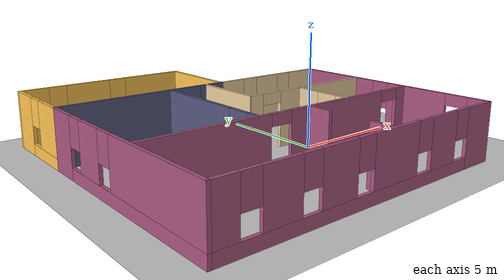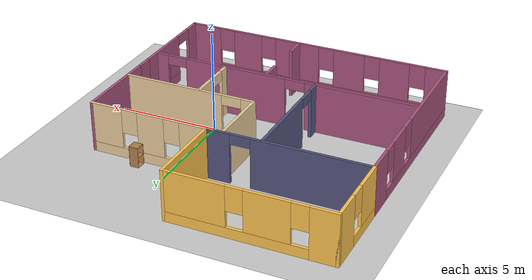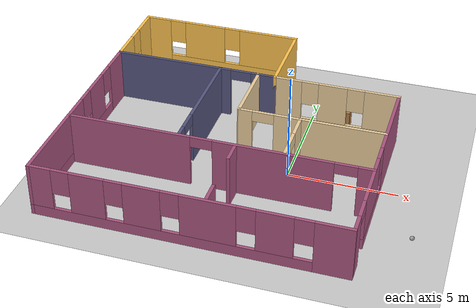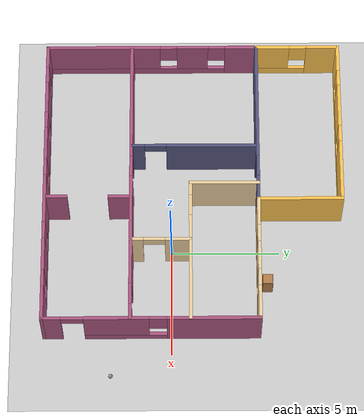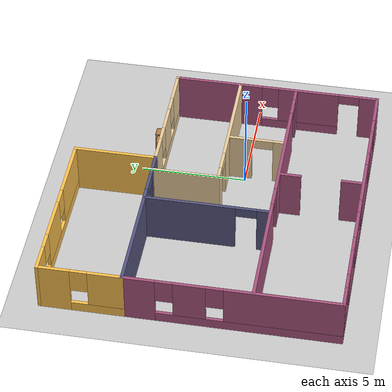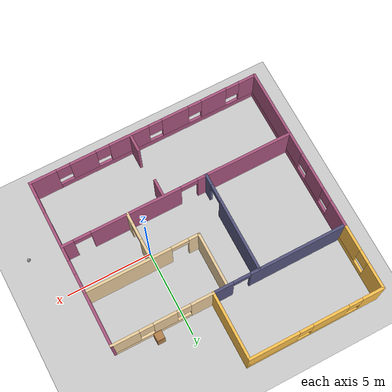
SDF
<sdf version="1.6">
 <world name="default">
  <model name="ground_plane">
   <static>1</static>
   <link name="link">
    <collision name="collision">
     <geometry><plane><normal>0 0 1</normal><size>100 100</size></plane></geometry>
     <surface>
      <contact><collide_bitmask>65535</collide_bitmask></contact>
      <friction><ode><mu>100</mu><mu2>50</mu2></ode></friction>
     </surface>
    </collision>
    <visual name="visual">
     <cast_shadows>0</cast_shadows>
     <geometry><plane><normal>0 0 1</normal><size>100 100</size></plane></geometry>
     <material>
      <script><uri>file://media/materials/scripts/gazebo.material</uri><name>Gazebo/Grey</name></script>
     </material>
    </visual>
   </link>
  </model>
  <model name="my_building">
   <pose>-2.73434 1.02226 0 0 -0 0</pose>
   <link name="Wall_26">
    <pose>-2.925 6.85 0 0 -0 0</pose>
    <visual name="Wall_26_Visual_0">
     <pose>-3.34539 0 1.25 0 -0 0</pose>
     <geometry><box><size>1.30922 0.15 2.5</size></box></geometry>
     <material>
      <script><uri>file://media/materials/scripts/gazebo.material</uri><name>Gazebo/Grey</name></script>
      <ambient>1 0.764706 0.305882 1</ambient>
     </material>
     <meta><layer>0</layer></meta>
    </visual>
    <collision name="Wall_26_Collision_0">
     <geometry><box><size>1.30922 0.15 2.5</size></box></geometry>
     <pose>-3.34539 0 1.25 0 -0 0</pose>
    </collision>
    <visual name="Wall_26_Visual_1">
     <pose>0.654609 0 0.25 0 -0 0</pose>
     <geometry><box><size>6.69078 0.15 0.5</size></box></geometry>
     <material>
      <script><uri>file://media/materials/scripts/gazebo.material</uri><name>Gazebo/Grey</name></script>
      <ambient>1 0.764706 0.305882 1</ambient>
     </material>
     <meta><layer>0</layer></meta>
    </visual>
    <collision name="Wall_26_Collision_1">
     <geometry><box><size>6.69078 0.15 0.5</size></box></geometry>
     <pose>0.654609 0 0.25 0 -0 0</pose>
    </collision>
    <visual name="Wall_26_Visual_2">
     <pose>-0.835359 0 1.5 0 -0 0</pose>
     <geometry><box><size>2.11085 0.15 2</size></box></geometry>
     <material>
      <script><uri>file://media/materials/scripts/gazebo.material</uri><name>Gazebo/Grey</name></script>
      <ambient>1 0.764706 0.305882 1</ambient>
     </material>
     <meta><layer>0</layer></meta>
    </visual>
    <collision name="Wall_26_Collision_2">
     <geometry><box><size>2.11085 0.15 2</size></box></geometry>
     <pose>-0.835359 0 1.5 0 -0 0</pose>
    </collision>
    <visual name="Wall_26_Visual_3">
     <pose>2.51003 0 1.5 0 -0 0</pose>
     <geometry><box><size>2.97994 0.15 2</size></box></geometry>
     <material>
      <script><uri>file://media/materials/scripts/gazebo.material</uri><name>Gazebo/Grey</name></script>
      <ambient>1 0.764706 0.305882 1</ambient>
     </material>
     <meta><layer>0</layer></meta>
    </visual>
    <collision name="Wall_26_Collision_3">
     <geometry><box><size>2.97994 0.15 2</size></box></geometry>
     <pose>2.51003 0 1.5 0 -0 0</pose>
    </collision>
    <visual name="Wall_26_Visual_4">
     <pose>-2.29078 0 1.9 0 -0 0</pose>
     <geometry><box><size>0.8 0.15 1.2</size></box></geometry>
     <material>
      <script><uri>file://media/materials/scripts/gazebo.material</uri><name>Gazebo/Grey</name></script>
      <ambient>1 0.764706 0.305882 1</ambient>
     </material>
     <meta><layer>0</layer></meta>
    </visual>
    <collision name="Wall_26_Collision_4">
     <geometry><box><size>0.8 0.15 1.2</size></box></geometry>
     <pose>-2.29078 0 1.9 0 -0 0</pose>
    </collision>
    <visual name="Wall_26_Visual_5">
     <pose>0.620064 0 1.9 0 -0 0</pose>
     <geometry><box><size>0.8 0.15 1.2</size></box></geometry>
     <material>
      <script><uri>file://media/materials/scripts/gazebo.material</uri><name>Gazebo/Grey</name></script>
      <ambient>1 0.764706 0.305882 1</ambient>
     </material>
     <meta><layer>0</layer></meta>
    </visual>
    <collision name="Wall_26_Collision_5">
     <geometry><box><size>0.8 0.15 1.2</size></box></geometry>
     <pose>0.620064 0 1.9 0 -0 0</pose>
    </collision>
   </link>
   <link name="Wall_28">
    <collision name="Wall_28_Collision">
     <geometry><box><size>4 0.15 2.5</size></box></geometry>
     <pose>0 0 1.25 0 -0 0</pose>
    </collision>
    <visual name="Wall_28_Visual">
     <pose>0 0 1.25 0 -0 0</pose>
     <geometry><box><size>4 0.15 2.5</size></box></geometry>
     <material>
      <script><uri>file://media/materials/scripts/gazebo.material</uri><name>Gazebo/Grey</name></script>
      <ambient>1 0.764706 0.305882 1</ambient>
     </material>
     <meta><layer>0</layer></meta>
    </visual>
    <pose>1 4.925 0 0 0 -1.5708</pose>
   </link>
   <link name="Wall_30">
    <pose>3.925 3 0 0 -0 0</pose>
    <visual name="Wall_30_Visual_0">
     <pose>-2.30571 0 1.25 0 -0 0</pose>
     <geometry><box><size>1.38858 0.15 2.5</size></box></geometry>
     <material>
      <script><uri>file://media/materials/scripts/gazebo.material</uri><name>Gazebo/Grey</name></script>
      <ambient>0.921569 0.807843 0.615686 1</ambient>
     </material>
     <meta><layer>0</layer></meta>
    </visual>
    <collision name="Wall_30_Collision_0">
     <geometry><box><size>1.38858 0.15 2.5</size></box></geometry>
     <pose>-2.30571 0 1.25 0 -0 0</pose>
    </collision>
    <visual name="Wall_30_Visual_1">
     <pose>0.694289 0 0.25 0 -0 0</pose>
     <geometry><box><size>4.61142 0.15 0.5</size></box></geometry>
     <material>
      <script><uri>file://media/materials/scripts/gazebo.material</uri><name>Gazebo/Grey</name></script>
      <ambient>0.921569 0.807843 0.615686 1</ambient>
     </material>
     <meta><layer>0</layer></meta>
    </visual>
    <collision name="Wall_30_Collision_1">
     <geometry><box><size>4.61142 0.15 0.5</size></box></geometry>
     <pose>0.694289 0 0.25 0 -0 0</pose>
    </collision>
    <visual name="Wall_30_Visual_2">
     <pose>-0.130466 0 1.5 0 -0 0</pose>
     <geometry><box><size>1.36191 0.15 2</size></box></geometry>
     <material>
      <script><uri>file://media/materials/scripts/gazebo.material</uri><name>Gazebo/Grey</name></script>
      <ambient>0.921569 0.807843 0.615686 1</ambient>
     </material>
     <meta><layer>0</layer></meta>
    </visual>
    <collision name="Wall_30_Collision_2">
     <geometry><box><size>1.36191 0.15 2</size></box></geometry>
     <pose>-0.130466 0 1.5 0 -0 0</pose>
    </collision>
    <visual name="Wall_30_Visual_3">
     <pose>2.17524 0 1.5 0 -0 0</pose>
     <geometry><box><size>1.64951 0.15 2</size></box></geometry>
     <material>
      <script><uri>file://media/materials/scripts/gazebo.material</uri><name>Gazebo/Grey</name></script>
      <ambient>0.921569 0.807843 0.615686 1</ambient>
     </material>
     <meta><layer>0</layer></meta>
    </visual>
    <collision name="Wall_30_Collision_3">
     <geometry><box><size>1.64951 0.15 2</size></box></geometry>
     <pose>2.17524 0 1.5 0 -0 0</pose>
    </collision>
    <visual name="Wall_30_Visual_4">
     <pose>-1.21142 0 1.9 0 -0 0</pose>
     <geometry><box><size>0.8 0.15 1.2</size></box></geometry>
     <material>
      <script><uri>file://media/materials/scripts/gazebo.material</uri><name>Gazebo/Grey</name></script>
      <ambient>0.921569 0.807843 0.615686 1</ambient>
     </material>
     <meta><layer>0</layer></meta>
    </visual>
    <collision name="Wall_30_Collision_4">
     <geometry><box><size>0.8 0.15 1.2</size></box></geometry>
     <pose>-1.21142 0 1.9 0 -0 0</pose>
    </collision>
    <visual name="Wall_30_Visual_5">
     <pose>0.950489 0 1.9 0 -0 0</pose>
     <geometry><box><size>0.8 0.15 1.2</size></box></geometry>
     <material>
      <script><uri>file://media/materials/scripts/gazebo.material</uri><name>Gazebo/Grey</name></script>
      <ambient>0.921569 0.807843 0.615686 1</ambient>
     </material>
     <meta><layer>0</layer></meta>
    </visual>
    <collision name="Wall_30_Collision_5">
     <geometry><box><size>0.8 0.15 1.2</size></box></geometry>
     <pose>0.950489 0 1.9 0 -0 0</pose>
    </collision>
   </link>
   <link name="Wall_32">
    <pose>6.85 -1.925 0 0 0 -1.5708</pose>
    <visual name="Wall_32_Visual_0">
     <pose>-2.85473 0 1.25 0 -0 0</pose>
     <geometry><box><size>4.29055 0.15 2.5</size></box></geometry>
     <material>
      <script><uri>file://media/materials/scripts/gazebo.material</uri><name>Gazebo/Grey</name></script>
      <ambient>0.666667 0.333333 0.498039 1</ambient>
     </material>
     <meta><layer>0</layer></meta>
    </visual>
    <collision name="Wall_32_Collision_0">
     <geometry><box><size>4.29055 0.15 2.5</size></box></geometry>
     <pose>-2.85473 0 1.25 0 -0 0</pose>
    </collision>
    <visual name="Wall_32_Visual_1">
     <pose>4.52668 0 1.25 0 -0 0</pose>
     <geometry><box><size>0.94664 0.15 2.5</size></box></geometry>
     <material>
      <script><uri>file://media/materials/scripts/gazebo.material</uri><name>Gazebo/Grey</name></script>
      <ambient>0.666667 0.333333 0.498039 1</ambient>
     </material>
     <meta><layer>0</layer></meta>
    </visual>
    <collision name="Wall_32_Collision_1">
     <geometry><box><size>0.94664 0.15 2.5</size></box></geometry>
     <pose>4.52668 0 1.25 0 -0 0</pose>
    </collision>
    <visual name="Wall_32_Visual_2">
     <pose>1.17196 0 0.25 0 -0 0</pose>
     <geometry><box><size>3.76281 0.15 0.5</size></box></geometry>
     <material>
      <script><uri>file://media/materials/scripts/gazebo.material</uri><name>Gazebo/Grey</name></script>
      <ambient>0.666667 0.333333 0.498039 1</ambient>
     </material>
     <meta><layer>0</layer></meta>
    </visual>
    <collision name="Wall_32_Collision_2">
     <geometry><box><size>3.76281 0.15 0.5</size></box></geometry>
     <pose>1.17196 0 0.25 0 -0 0</pose>
    </collision>
    <visual name="Wall_32_Visual_3">
     <pose>1.57195 0 1.5 0 -0 0</pose>
     <geometry><box><size>2.96281 0.15 2</size></box></geometry>
     <material>
      <script><uri>file://media/materials/scripts/gazebo.material</uri><name>Gazebo/Grey</name></script>
      <ambient>0.666667 0.333333 0.498039 1</ambient>
     </material>
     <meta><layer>0</layer></meta>
    </visual>
    <collision name="Wall_32_Collision_3">
     <geometry><box><size>2.96281 0.15 2</size></box></geometry>
     <pose>1.57195 0 1.5 0 -0 0</pose>
    </collision>
    <visual name="Wall_32_Visual_4">
     <pose>-0.30945 0 1.9 0 -0 0</pose>
     <geometry><box><size>0.8 0.15 1.2</size></box></geometry>
     <material>
      <script><uri>file://media/materials/scripts/gazebo.material</uri><name>Gazebo/Grey</name></script>
      <ambient>0.666667 0.333333 0.498039 1</ambient>
     </material>
     <meta><layer>0</layer></meta>
    </visual>
    <collision name="Wall_32_Collision_4">
     <geometry><box><size>0.8 0.15 1.2</size></box></geometry>
     <pose>-0.30945 0 1.9 0 -0 0</pose>
    </collision>
    <visual name="Wall_32_Visual_5">
     <pose>3.55336 0 2.25 0 -0 0</pose>
     <geometry><box><size>1 0.15 0.5</size></box></geometry>
     <material>
      <script><uri>file://media/materials/scripts/gazebo.material</uri><name>Gazebo/Grey</name></script>
      <ambient>0.666667 0.333333 0.498039 1</ambient>
     </material>
     <meta><layer>0</layer></meta>
    </visual>
    <collision name="Wall_32_Collision_5">
     <geometry><box><size>1 0.15 0.5</size></box></geometry>
     <pose>3.55336 0 2.25 0 -0 0</pose>
    </collision>
   </link>
   <link name="Wall_35">
    <pose>-6.85 4.925 0 0 0 -1.5708</pose>
    <visual name="Wall_35_Visual_0">
     <pose>-1.22342 0 1.25 0 -0 0</pose>
     <geometry><box><size>1.55316 0.15 2.5</size></box></geometry>
     <material>
      <script><uri>file://media/materials/scripts/gazebo.material</uri><name>Gazebo/Grey</name></script>
      <ambient>1 0.764706 0.305882 1</ambient>
     </material>
     <meta><layer>0</layer></meta>
    </visual>
    <collision name="Wall_35_Collision_0">
     <geometry><box><size>1.55316 0.15 2.5</size></box></geometry>
     <pose>-1.22342 0 1.25 0 -0 0</pose>
    </collision>
    <visual name="Wall_35_Visual_1">
     <pose>0.77658 0 0.25 0 -0 0</pose>
     <geometry><box><size>2.44684 0.15 0.5</size></box></geometry>
     <material>
      <script><uri>file://media/materials/scripts/gazebo.material</uri><name>Gazebo/Grey</name></script>
      <ambient>1 0.764706 0.305882 1</ambient>
     </material>
     <meta><layer>0</layer></meta>
    </visual>
    <collision name="Wall_35_Collision_1">
     <geometry><box><size>2.44684 0.15 0.5</size></box></geometry>
     <pose>0.77658 0 0.25 0 -0 0</pose>
    </collision>
    <visual name="Wall_35_Visual_2">
     <pose>1.17658 0 1.5 0 -0 0</pose>
     <geometry><box><size>1.64684 0.15 2</size></box></geometry>
     <material>
      <script><uri>file://media/materials/scripts/gazebo.material</uri><name>Gazebo/Grey</name></script>
      <ambient>1 0.764706 0.305882 1</ambient>
     </material>
     <meta><layer>0</layer></meta>
    </visual>
    <collision name="Wall_35_Collision_2">
     <geometry><box><size>1.64684 0.15 2</size></box></geometry>
     <pose>1.17658 0 1.5 0 -0 0</pose>
    </collision>
    <visual name="Wall_35_Visual_3">
     <pose>-0.046841 0 1.9 0 -0 0</pose>
     <geometry><box><size>0.8 0.15 1.2</size></box></geometry>
     <material>
      <script><uri>file://media/materials/scripts/gazebo.material</uri><name>Gazebo/Grey</name></script>
      <ambient>1 0.764706 0.305882 1</ambient>
     </material>
     <meta><layer>0</layer></meta>
    </visual>
    <collision name="Wall_35_Collision_3">
     <geometry><box><size>0.8 0.15 1.2</size></box></geometry>
     <pose>-0.046841 0 1.9 0 -0 0</pose>
    </collision>
   </link>
   <link name="Wall_37">
    <pose>-2.925 3 0 0 -0 0</pose>
    <visual name="Wall_37_Visual_0">
     <pose>-1.1232 0 1.25 0 -0 0</pose>
     <geometry><box><size>5.75361 0.15 2.5</size></box></geometry>
     <material>
      <script><uri>file://media/materials/scripts/gazebo.material</uri><name>Gazebo/Grey</name></script>
      <ambient>0.333333 0.333333 0.498039 1</ambient>
     </material>
     <meta><layer>0</layer></meta>
    </visual>
    <collision name="Wall_37_Collision_0">
     <geometry><box><size>5.75361 0.15 2.5</size></box></geometry>
     <pose>-1.1232 0 1.25 0 -0 0</pose>
    </collision>
    <visual name="Wall_37_Visual_1">
     <pose>3.3768 0 1.25 0 -0 0</pose>
     <geometry><box><size>1.24639 0.15 2.5</size></box></geometry>
     <material>
      <script><uri>file://media/materials/scripts/gazebo.material</uri><name>Gazebo/Grey</name></script>
      <ambient>0.333333 0.333333 0.498039 1</ambient>
     </material>
     <meta><layer>0</layer></meta>
    </visual>
    <collision name="Wall_37_Collision_1">
     <geometry><box><size>1.24639 0.15 2.5</size></box></geometry>
     <pose>3.3768 0 1.25 0 -0 0</pose>
    </collision>
    <visual name="Wall_37_Visual_2">
     <pose>2.2536 0 2.25 0 -0 0</pose>
     <geometry><box><size>1 0.15 0.5</size></box></geometry>
     <material>
      <script><uri>file://media/materials/scripts/gazebo.material</uri><name>Gazebo/Grey</name></script>
      <ambient>0.333333 0.333333 0.498039 1</ambient>
     </material>
     <meta><layer>0</layer></meta>
    </visual>
    <collision name="Wall_37_Collision_2">
     <geometry><box><size>1 0.15 0.5</size></box></geometry>
     <pose>2.2536 0 2.25 0 -0 0</pose>
    </collision>
   </link>
   <link name="Wall_39">
    <pose>-6.85 -1.925 0 0 0 -1.5708</pose>
    <visual name="Wall_39_Visual_0">
     <pose>-4.22364 0 1.25 0 -0 0</pose>
     <geometry><box><size>1.55272 0.15 2.5</size></box></geometry>
     <material>
      <script><uri>file://media/materials/scripts/gazebo.material</uri><name>Gazebo/Grey</name></script>
      <ambient>0.666667 0.333333 0.498039 1</ambient>
     </material>
     <meta><layer>0</layer></meta>
    </visual>
    <collision name="Wall_39_Collision_0">
     <geometry><box><size>1.55272 0.15 2.5</size></box></geometry>
     <pose>-4.22364 0 1.25 0 -0 0</pose>
    </collision>
    <visual name="Wall_39_Visual_1">
     <pose>0.776358 0 0.25 0 -0 0</pose>
     <geometry><box><size>8.44728 0.15 0.5</size></box></geometry>
     <material>
      <script><uri>file://media/materials/scripts/gazebo.material</uri><name>Gazebo/Grey</name></script>
      <ambient>0.666667 0.333333 0.498039 1</ambient>
     </material>
     <meta><layer>0</layer></meta>
    </visual>
    <collision name="Wall_39_Collision_1">
     <geometry><box><size>8.44728 0.15 0.5</size></box></geometry>
     <pose>0.776358 0 0.25 0 -0 0</pose>
    </collision>
    <visual name="Wall_39_Visual_2">
     <pose>-1.91089 0 1.5 0 -0 0</pose>
     <geometry><box><size>1.47279 0.15 2</size></box></geometry>
     <material>
      <script><uri>file://media/materials/scripts/gazebo.material</uri><name>Gazebo/Grey</name></script>
      <ambient>0.666667 0.333333 0.498039 1</ambient>
     </material>
     <meta><layer>0</layer></meta>
    </visual>
    <collision name="Wall_39_Collision_2">
     <geometry><box><size>1.47279 0.15 2</size></box></geometry>
     <pose>-1.91089 0 1.5 0 -0 0</pose>
    </collision>
    <visual name="Wall_39_Visual_3">
     <pose>2.31275 0 1.5 0 -0 0</pose>
     <geometry><box><size>5.37449 0.15 2</size></box></geometry>
     <material>
      <script><uri>file://media/materials/scripts/gazebo.material</uri><name>Gazebo/Grey</name></script>
      <ambient>0.666667 0.333333 0.498039 1</ambient>
     </material>
     <meta><layer>0</layer></meta>
    </visual>
    <collision name="Wall_39_Collision_3">
     <geometry><box><size>5.37449 0.15 2</size></box></geometry>
     <pose>2.31275 0 1.5 0 -0 0</pose>
    </collision>
    <visual name="Wall_39_Visual_4">
     <pose>-3.04728 0 1.9 0 -0 0</pose>
     <geometry><box><size>0.8 0.15 1.2</size></box></geometry>
     <material>
      <script><uri>file://media/materials/scripts/gazebo.material</uri><name>Gazebo/Grey</name></script>
      <ambient>0.666667 0.333333 0.498039 1</ambient>
     </material>
     <meta><layer>0</layer></meta>
    </visual>
    <collision name="Wall_39_Collision_4">
     <geometry><box><size>0.8 0.15 1.2</size></box></geometry>
     <pose>-3.04728 0 1.9 0 -0 0</pose>
    </collision>
    <visual name="Wall_39_Visual_5">
     <pose>-0.774493 0 1.9 0 -0 0</pose>
     <geometry><box><size>0.8 0.15 1.2</size></box></geometry>
     <material>
      <script><uri>file://media/materials/scripts/gazebo.material</uri><name>Gazebo/Grey</name></script>
      <ambient>0.666667 0.333333 0.498039 1</ambient>
     </material>
     <meta><layer>0</layer></meta>
    </visual>
    <collision name="Wall_39_Collision_5">
     <geometry><box><size>0.8 0.15 1.2</size></box></geometry>
     <pose>-0.774493 0 1.9 0 -0 0</pose>
    </collision>
   </link>
   <link name="Wall_41">
    <pose>0 -6.85 0 0 -0 3.14159</pose>
    <visual name="Wall_41_Visual_0">
     <pose>-6.11101 0 1.25 0 -0 0</pose>
     <geometry><box><size>1.62797 0.15 2.5</size></box></geometry>
     <material>
      <script><uri>file://media/materials/scripts/gazebo.material</uri><name>Gazebo/Grey</name></script>
      <ambient>0.666667 0.333333 0.498039 1</ambient>
     </material>
     <meta><layer>0</layer></meta>
    </visual>
    <collision name="Wall_41_Collision_0">
     <geometry><box><size>1.62797 0.15 2.5</size></box></geometry>
     <pose>-6.11101 0 1.25 0 -0 0</pose>
    </collision>
    <visual name="Wall_41_Visual_1">
     <pose>0.813987 0 0.25 0 -0 0</pose>
     <geometry><box><size>12.222 0.15 0.5</size></box></geometry>
     <material>
      <script><uri>file://media/materials/scripts/gazebo.material</uri><name>Gazebo/Grey</name></script>
      <ambient>0.666667 0.333333 0.498039 1</ambient>
     </material>
     <meta><layer>0</layer></meta>
    </visual>
    <collision name="Wall_41_Collision_1">
     <geometry><box><size>12.222 0.15 0.5</size></box></geometry>
     <pose>0.813987 0 0.25 0 -0 0</pose>
    </collision>
    <visual name="Wall_41_Visual_2">
     <pose>-3.72076 0 1.5 0 -0 0</pose>
     <geometry><box><size>1.55254 0.15 2</size></box></geometry>
     <material>
      <script><uri>file://media/materials/scripts/gazebo.material</uri><name>Gazebo/Grey</name></script>
      <ambient>0.666667 0.333333 0.498039 1</ambient>
     </material>
     <meta><layer>0</layer></meta>
    </visual>
    <collision name="Wall_41_Collision_2">
     <geometry><box><size>1.55254 0.15 2</size></box></geometry>
     <pose>-3.72076 0 1.5 0 -0 0</pose>
    </collision>
    <visual name="Wall_41_Visual_3">
     <pose>-0.949548 0 1.5 0 -0 0</pose>
     <geometry><box><size>2.38988 0.15 2</size></box></geometry>
     <material>
      <script><uri>file://media/materials/scripts/gazebo.material</uri><name>Gazebo/Grey</name></script>
      <ambient>0.666667 0.333333 0.498039 1</ambient>
     </material>
     <meta><layer>0</layer></meta>
    </visual>
    <collision name="Wall_41_Collision_3">
     <geometry><box><size>2.38988 0.15 2</size></box></geometry>
     <pose>-0.949548 0 1.5 0 -0 0</pose>
    </collision>
    <visual name="Wall_41_Visual_4">
     <pose>1.86154 0 1.5 0 -0 0</pose>
     <geometry><box><size>1.63228 0.15 2</size></box></geometry>
     <material>
      <script><uri>file://media/materials/scripts/gazebo.material</uri><name>Gazebo/Grey</name></script>
      <ambient>0.666667 0.333333 0.498039 1</ambient>
     </material>
     <meta><layer>0</layer></meta>
    </visual>
    <collision name="Wall_41_Collision_4">
     <geometry><box><size>1.63228 0.15 2</size></box></geometry>
     <pose>1.86154 0 1.5 0 -0 0</pose>
    </collision>
    <visual name="Wall_41_Visual_5">
     <pose>4.25395 0 1.5 0 -0 0</pose>
     <geometry><box><size>1.55254 0.15 2</size></box></geometry>
     <material>
      <script><uri>file://media/materials/scripts/gazebo.material</uri><name>Gazebo/Grey</name></script>
      <ambient>0.666667 0.333333 0.498039 1</ambient>
     </material>
     <meta><layer>0</layer></meta>
    </visual>
    <collision name="Wall_41_Collision_5">
     <geometry><box><size>1.55254 0.15 2</size></box></geometry>
     <pose>4.25395 0 1.5 0 -0 0</pose>
    </collision>
    <visual name="Wall_41_Visual_6">
     <pose>6.37761 0 1.5 0 -0 0</pose>
     <geometry><box><size>1.09478 0.15 2</size></box></geometry>
     <material>
      <script><uri>file://media/materials/scripts/gazebo.material</uri><name>Gazebo/Grey</name></script>
      <ambient>0.666667 0.333333 0.498039 1</ambient>
     </material>
     <meta><layer>0</layer></meta>
    </visual>
    <collision name="Wall_41_Collision_6">
     <geometry><box><size>1.09478 0.15 2</size></box></geometry>
     <pose>6.37761 0 1.5 0 -0 0</pose>
    </collision>
    <visual name="Wall_41_Visual_7">
     <pose>-4.89703 0 1.9 0 -0 0</pose>
     <geometry><box><size>0.8 0.15 1.2</size></box></geometry>
     <material>
      <script><uri>file://media/materials/scripts/gazebo.material</uri><name>Gazebo/Grey</name></script>
      <ambient>0.666667 0.333333 0.498039 1</ambient>
     </material>
     <meta><layer>0</layer></meta>
    </visual>
    <collision name="Wall_41_Collision_7">
     <geometry><box><size>0.8 0.15 1.2</size></box></geometry>
     <pose>-4.89703 0 1.9 0 -0 0</pose>
    </collision>
    <visual name="Wall_41_Visual_8">
     <pose>-2.54449 0 1.9 0 -0 0</pose>
     <geometry><box><size>0.8 0.15 1.2</size></box></geometry>
     <material>
      <script><uri>file://media/materials/scripts/gazebo.material</uri><name>Gazebo/Grey</name></script>
      <ambient>0.666667 0.333333 0.498039 1</ambient>
     </material>
     <meta><layer>0</layer></meta>
    </visual>
    <collision name="Wall_41_Collision_8">
     <geometry><box><size>0.8 0.15 1.2</size></box></geometry>
     <pose>-2.54449 0 1.9 0 -0 0</pose>
    </collision>
    <visual name="Wall_41_Visual_9">
     <pose>0.645393 0 1.9 0 -0 0</pose>
     <geometry><box><size>0.8 0.15 1.2</size></box></geometry>
     <material>
      <script><uri>file://media/materials/scripts/gazebo.material</uri><name>Gazebo/Grey</name></script>
      <ambient>0.666667 0.333333 0.498039 1</ambient>
     </material>
     <meta><layer>0</layer></meta>
    </visual>
    <collision name="Wall_41_Collision_9">
     <geometry><box><size>0.8 0.15 1.2</size></box></geometry>
     <pose>0.645393 0 1.9 0 -0 0</pose>
    </collision>
    <visual name="Wall_41_Visual_10">
     <pose>3.07768 0 1.9 0 -0 0</pose>
     <geometry><box><size>0.8 0.15 1.2</size></box></geometry>
     <material>
      <script><uri>file://media/materials/scripts/gazebo.material</uri><name>Gazebo/Grey</name></script>
      <ambient>0.666667 0.333333 0.498039 1</ambient>
     </material>
     <meta><layer>0</layer></meta>
    </visual>
    <collision name="Wall_41_Collision_10">
     <geometry><box><size>0.8 0.15 1.2</size></box></geometry>
     <pose>3.07768 0 1.9 0 -0 0</pose>
    </collision>
    <visual name="Wall_41_Visual_11">
     <pose>5.43022 0 1.9 0 -0 0</pose>
     <geometry><box><size>0.8 0.15 1.2</size></box></geometry>
     <material>
      <script><uri>file://media/materials/scripts/gazebo.material</uri><name>Gazebo/Grey</name></script>
      <ambient>0.666667 0.333333 0.498039 1</ambient>
     </material>
     <meta><layer>0</layer></meta>
    </visual>
    <collision name="Wall_41_Collision_11">
     <geometry><box><size>0.8 0.15 1.2</size></box></geometry>
     <pose>5.43022 0 1.9 0 -0 0</pose>
    </collision>
   </link>
   <link name="Wall_44">
    <pose>0.043501 -2.87666 0 0 -0 0</pose>
    <visual name="Wall_44_Visual_0">
     <pose>-4.04041 0 1.25 0 -0 0</pose>
     <geometry><box><size>5.66919 0.15 2.5</size></box></geometry>
     <material>
      <script><uri>file://media/materials/scripts/gazebo.material</uri><name>Gazebo/Grey</name></script>
      <ambient>0.666667 0.333333 0.498039 1</ambient>
     </material>
     <meta><layer>0</layer></meta>
    </visual>
    <collision name="Wall_44_Collision_0">
     <geometry><box><size>5.66919 0.15 2.5</size></box></geometry>
     <pose>-4.04041 0 1.25 0 -0 0</pose>
    </collision>
    <visual name="Wall_44_Visual_1">
     <pose>2.45815 0 1.25 0 -0 0</pose>
     <geometry><box><size>5.32793 0.15 2.5</size></box></geometry>
     <material>
      <script><uri>file://media/materials/scripts/gazebo.material</uri><name>Gazebo/Grey</name></script>
      <ambient>0.666667 0.333333 0.498039 1</ambient>
     </material>
     <meta><layer>0</layer></meta>
    </visual>
    <collision name="Wall_44_Collision_1">
     <geometry><box><size>5.32793 0.15 2.5</size></box></geometry>
     <pose>2.45815 0 1.25 0 -0 0</pose>
    </collision>
    <visual name="Wall_44_Visual_2">
     <pose>6.49856 0 1.25 0 -0 0</pose>
     <geometry><box><size>0.752884 0.15 2.5</size></box></geometry>
     <material>
      <script><uri>file://media/materials/scripts/gazebo.material</uri><name>Gazebo/Grey</name></script>
      <ambient>0.666667 0.333333 0.498039 1</ambient>
     </material>
     <meta><layer>0</layer></meta>
    </visual>
    <collision name="Wall_44_Collision_2">
     <geometry><box><size>0.752884 0.15 2.5</size></box></geometry>
     <pose>6.49856 0 1.25 0 -0 0</pose>
    </collision>
    <visual name="Wall_44_Visual_3">
     <pose>-0.705812 0 2.25 0 -0 0</pose>
     <geometry><box><size>1 0.15 0.5</size></box></geometry>
     <material>
      <script><uri>file://media/materials/scripts/gazebo.material</uri><name>Gazebo/Grey</name></script>
      <ambient>0.666667 0.333333 0.498039 1</ambient>
     </material>
     <meta><layer>0</layer></meta>
    </visual>
    <collision name="Wall_44_Collision_3">
     <geometry><box><size>1 0.15 0.5</size></box></geometry>
     <pose>-0.705812 0 2.25 0 -0 0</pose>
    </collision>
    <visual name="Wall_44_Visual_4">
     <pose>5.62212 0 2.25 0 -0 0</pose>
     <geometry><box><size>1 0.15 0.5</size></box></geometry>
     <material>
      <script><uri>file://media/materials/scripts/gazebo.material</uri><name>Gazebo/Grey</name></script>
      <ambient>0.666667 0.333333 0.498039 1</ambient>
     </material>
     <meta><layer>0</layer></meta>
    </visual>
    <collision name="Wall_44_Collision_4">
     <geometry><box><size>1 0.15 0.5</size></box></geometry>
     <pose>5.62212 0 2.25 0 -0 0</pose>
    </collision>
   </link>
   <link name="Wall_47">
    <collision name="Wall_47_Collision">
     <geometry><box><size>3.27 0.15 2.5</size></box></geometry>
     <pose>0 0 1.25 0 -0 0</pose>
    </collision>
    <visual name="Wall_47_Visual">
     <pose>0 0 1.25 0 -0 0</pose>
     <geometry><box><size>3.27 0.15 2.5</size></box></geometry>
     <material>
      <script><uri>file://media/materials/scripts/gazebo.material</uri><name>Gazebo/Grey</name></script>
      <ambient>0.921569 0.807843 0.615686 1</ambient>
     </material>
     <meta><layer>0</layer></meta>
    </visual>
    <pose>0.189 1.43 0 0 0 -1.5708</pose>
   </link>
   <link name="Wall_49">
    <pose>-1.705 0.0515 0 0 0 -1.5708</pose>
    <visual name="Wall_49_Visual_0">
     <pose>-0.836875 0 1.25 0 -0 0</pose>
     <geometry><box><size>4.27125 0.15 2.5</size></box></geometry>
     <material>
      <script><uri>file://media/materials/scripts/gazebo.material</uri><name>Gazebo/Grey</name></script>
      <ambient>0.333333 0.333333 0.498039 1</ambient>
     </material>
     <meta><layer>0</layer></meta>
    </visual>
    <collision name="Wall_49_Collision_0">
     <geometry><box><size>4.27125 0.15 2.5</size></box></geometry>
     <pose>-0.836875 0 1.25 0 -0 0</pose>
    </collision>
    <visual name="Wall_49_Visual_1">
     <pose>2.63563 0 1.25 0 -0 0</pose>
     <geometry><box><size>0.67375 0.15 2.5</size></box></geometry>
     <material>
      <script><uri>file://media/materials/scripts/gazebo.material</uri><name>Gazebo/Grey</name></script>
      <ambient>0.333333 0.333333 0.498039 1</ambient>
     </material>
     <meta><layer>0</layer></meta>
    </visual>
    <collision name="Wall_49_Collision_1">
     <geometry><box><size>0.67375 0.15 2.5</size></box></geometry>
     <pose>2.63563 0 1.25 0 -0 0</pose>
    </collision>
    <visual name="Wall_49_Visual_2">
     <pose>1.79875 0 2.25 0 -0 0</pose>
     <geometry><box><size>1 0.15 0.5</size></box></geometry>
     <material>
      <script><uri>file://media/materials/scripts/gazebo.material</uri><name>Gazebo/Grey</name></script>
      <ambient>0.333333 0.333333 0.498039 1</ambient>
     </material>
     <meta><layer>0</layer></meta>
    </visual>
    <collision name="Wall_49_Collision_2">
     <geometry><box><size>1 0.15 0.5</size></box></geometry>
     <pose>1.79875 0 2.25 0 -0 0</pose>
    </collision>
   </link>
   <link name="Wall_51">
    <pose>3.53653 -0.137125 0 0 -0 0</pose>
    <visual name="Wall_51_Visual_0">
     <pose>-3.04888 0 1.25 0 -0 0</pose>
     <geometry><box><size>0.652229 0.15 2.5</size></box></geometry>
     <material>
      <script><uri>file://media/materials/scripts/gazebo.material</uri><name>Gazebo/Grey</name></script>
      <ambient>0.921569 0.807843 0.615686 1</ambient>
     </material>
     <meta><layer>0</layer></meta>
    </visual>
    <collision name="Wall_51_Collision_0">
     <geometry><box><size>0.652229 0.15 2.5</size></box></geometry>
     <pose>-3.04888 0 1.25 0 -0 0</pose>
    </collision>
    <visual name="Wall_51_Visual_1">
     <pose>0.826115 0 1.25 0 -0 0</pose>
     <geometry><box><size>5.09777 0.15 2.5</size></box></geometry>
     <material>
      <script><uri>file://media/materials/scripts/gazebo.material</uri><name>Gazebo/Grey</name></script>
      <ambient>0.921569 0.807843 0.615686 1</ambient>
     </material>
     <meta><layer>0</layer></meta>
    </visual>
    <collision name="Wall_51_Collision_1">
     <geometry><box><size>5.09777 0.15 2.5</size></box></geometry>
     <pose>0.826115 0 1.25 0 -0 0</pose>
    </collision>
    <visual name="Wall_51_Visual_2">
     <pose>-2.22277 0 2.25 0 -0 0</pose>
     <geometry><box><size>1 0.15 0.5</size></box></geometry>
     <material>
      <script><uri>file://media/materials/scripts/gazebo.material</uri><name>Gazebo/Grey</name></script>
      <ambient>0.921569 0.807843 0.615686 1</ambient>
     </material>
     <meta><layer>0</layer></meta>
    </visual>
    <collision name="Wall_51_Collision_2">
     <geometry><box><size>1 0.15 0.5</size></box></geometry>
     <pose>-2.22277 0 2.25 0 -0 0</pose>
    </collision>
   </link>
   <link name="Wall_53">
    <pose>3.01 -1.5185 0 0 0 -1.5708</pose>
    <visual name="Wall_53_Visual_0">
     <pose>-0.823687 0 1.25 0 -0 0</pose>
     <geometry><box><size>1.21763 0.15 2.5</size></box></geometry>
     <material>
      <script><uri>file://media/materials/scripts/gazebo.material</uri><name>Gazebo/Grey</name></script>
      <ambient>0.921569 0.807843 0.615686 1</ambient>
     </material>
     <meta><layer>0</layer></meta>
    </visual>
    <collision name="Wall_53_Collision_0">
     <geometry><box><size>1.21763 0.15 2.5</size></box></geometry>
     <pose>-0.823687 0 1.25 0 -0 0</pose>
    </collision>
    <visual name="Wall_53_Visual_1">
     <pose>1.10881 0 1.25 0 -0 0</pose>
     <geometry><box><size>0.647374 0.15 2.5</size></box></geometry>
     <material>
      <script><uri>file://media/materials/scripts/gazebo.material</uri><name>Gazebo/Grey</name></script>
      <ambient>0.921569 0.807843 0.615686 1</ambient>
     </material>
     <meta><layer>0</layer></meta>
    </visual>
    <collision name="Wall_53_Collision_1">
     <geometry><box><size>0.647374 0.15 2.5</size></box></geometry>
     <pose>1.10881 0 1.25 0 -0 0</pose>
    </collision>
    <visual name="Wall_53_Visual_2">
     <pose>0.285126 0 2.25 0 -0 0</pose>
     <geometry><box><size>1 0.15 0.5</size></box></geometry>
     <material>
      <script><uri>file://media/materials/scripts/gazebo.material</uri><name>Gazebo/Grey</name></script>
      <ambient>0.921569 0.807843 0.615686 1</ambient>
     </material>
     <meta><layer>0</layer></meta>
    </visual>
    <collision name="Wall_53_Collision_2">
     <geometry><box><size>1 0.15 0.5</size></box></geometry>
     <pose>0.285126 0 2.25 0 -0 0</pose>
    </collision>
   </link>
   <link name="Wall_57">
    <collision name="Wall_57_Collision">
     <geometry><box><size>1 0.15 2.5</size></box></geometry>
     <pose>0 0 1.25 0 -0 0</pose>
    </collision>
    <visual name="Wall_57_Visual">
     <pose>0 0 1.25 0 -0 0</pose>
     <geometry><box><size>1 0.15 2.5</size></box></geometry>
     <material>
      <script><uri>file://media/materials/scripts/gazebo.material</uri><name>Gazebo/Grey</name></script>
      <ambient>0.666667 0.333333 0.498039 1</ambient>
     </material>
     <meta><layer>0</layer></meta>
    </visual>
    <pose>0.865 -6.3 0 0 -0 1.5708</pose>
   </link>
   <link name="Wall_61">
    <collision name="Wall_61_Collision">
     <geometry><box><size>1 0.15 2.5</size></box></geometry>
     <pose>0 0 1.25 0 -0 0</pose>
    </collision>
    <visual name="Wall_61_Visual">
     <pose>0 0 1.25 0 -0 0</pose>
     <geometry><box><size>1 0.15 2.5</size></box></geometry>
     <material>
      <script><uri>file://media/materials/scripts/gazebo.material</uri><name>Gazebo/Grey</name></script>
      <ambient>0.666667 0.333333 0.498039 1</ambient>
     </material>
     <meta><layer>0</layer></meta>
    </visual>
    <pose>0.867 -3.43606 0 0 0 -1.5708</pose>
   </link>
   <static>1</static>
  </model>
  <model name="cabinet">
   <static>1</static>
   <link name="cabinet_bottom_plate">
    <inertial>
     <pose>0 0 -1 0 -0 0</pose>
     <inertia><ixx>2.05</ixx><ixy>0</ixy><ixz>0</ixz><iyy>2.05</iyy><iyz>0</iyz><izz>2.05</izz></inertia>
     <mass>25</mass>
    </inertial>
    <collision name="cabinet_bottom_plate_geom">
     <pose>0 0 0.01 0 -0 0</pose>
     <geometry><box><size>0.45 0.45 0.02</size></box></geometry>
    </collision>
    <visual name="cabinet_bottom_plate_geom_visual">
     <pose>0 0 0.01 0 -0 0</pose>
     <geometry><box><size>0.45 0.45 0.02</size></box></geometry>
     <material>
      <script><uri>file://media/materials/scripts/gazebo.material</uri><name>Gazebo/Wood</name></script>
     </material>
    </visual>
    <collision name="cabinet_bottom_plate_geom_cabinet_back_plate">
     <pose>0.235 0 0.51 0 -0 0</pose>
     <geometry><box><size>0.02 0.45 1.02</size></box></geometry>
    </collision>
    <visual name="cabinet_bottom_plate_geom_cabinet_back_plate_visual">
     <pose>0.235 0 0.51 0 -0 0</pose>
     <geometry><box><size>0.02 0.45 1.02</size></box></geometry>
     <material>
      <script><uri>file://media/materials/scripts/gazebo.material</uri><name>Gazebo/Wood</name></script>
     </material>
    </visual>
    <collision name="cabinet_bottom_plate_geom_cabinet_left_plate">
     <pose>0 0.235 0.51 0 -0 0</pose>
     <geometry><box><size>0.45 0.02 1.02</size></box></geometry>
    </collision>
    <visual name="cabinet_bottom_plate_geom_cabinet_left_plate_visual">
     <pose>0 0.235 0.51 0 -0 0</pose>
     <geometry><box><size>0.45 0.02 1.02</size></box></geometry>
     <material>
      <script><uri>file://media/materials/scripts/gazebo.material</uri><name>Gazebo/Wood</name></script>
     </material>
    </visual>
    <collision name="cabinet_bottom_plate_geom_cabinet_middle_plate">
     <pose>0 0 0.51 0 -0 0</pose>
     <geometry><box><size>0.45 0.45 0.02</size></box></geometry>
    </collision>
    <visual name="cabinet_bottom_plate_geom_cabinet_middle_plate_visual">
     <pose>0 0 0.51 0 -0 0</pose>
     <geometry><box><size>0.45 0.45 0.02</size></box></geometry>
     <material>
      <script><uri>file://media/materials/scripts/gazebo.material</uri><name>Gazebo/Wood</name></script>
     </material>
    </visual>
    <collision name="cabinet_bottom_plate_geom_cabinet_right_plate">
     <pose>0 -0.235 0.51 0 -0 0</pose>
     <geometry><box><size>0.45 0.02 1.02</size></box></geometry>
    </collision>
    <visual name="cabinet_bottom_plate_geom_cabinet_right_plate_visual">
     <pose>0 -0.235 0.51 0 -0 0</pose>
     <geometry><box><size>0.45 0.02 1.02</size></box></geometry>
     <material>
      <script><uri>file://media/materials/scripts/gazebo.material</uri><name>Gazebo/Wood</name></script>
     </material>
    </visual>
    <collision name="cabinet_bottom_plate_geom_cabinet_top_plate">
     <pose>0 0 1.01 0 -0 0</pose>
     <geometry><box><size>0.45 0.45 0.02</size></box></geometry>
    </collision>
    <visual name="cabinet_bottom_plate_geom_cabinet_top_plate_visual">
     <pose>0 0 1.01 0 -0 0</pose>
     <geometry><box><size>0.45 0.45 0.02</size></box></geometry>
     <material>
      <script><uri>file://media/materials/scripts/gazebo.material</uri><name>Gazebo/Wood</name></script>
     </material>
    </visual>
   </link>
   <pose>1.66349 4.42512 0 0 -0 0</pose>
  </model>
  <model name="my_ball">
   <link name="link_0">
    <inertial>
     <mass>1</mass>
     <inertia><ixx>0.1</ixx><ixy>0</ixy><ixz>0</ixz><iyy>0.1</iyy><iyz>0</iyz><izz>0.1</izz></inertia>
    </inertial>
    <visual name="visual">
     <geometry><sphere><radius>0.1</radius></sphere></geometry>
     <material>
      <lighting>1</lighting>
      <script><uri>file://media/materials/scripts/gazebo.material</uri><name>Gazebo/Grey</name></script>
      <shader type="pixel"><normal_map>__default__</normal_map></shader>
      <ambient>1 1 1 1</ambient>
      <diffuse>1 1 1 1</diffuse>
      <specular>1 1 1 1</specular>
      <emissive>1 1 1 1</emissive>
     </material>
    </visual>
    <collision name="collision">
     <geometry><sphere><radius>0.1</radius></sphere></geometry>
     <surface>
      <friction>
       <ode><mu>1</mu><mu2>1</mu2><fdir1>0 0 0</fdir1><slip1>0</slip1><slip2>0</slip2></ode>
       <torsional>
        <coefficient>1</coefficient>
        <patch_radius>0</patch_radius>
        <surface_radius>0</surface_radius>
        <use_patch_radius>1</use_patch_radius>
        <ode><slip>0</slip></ode>
       </torsional>
      </friction>
      <bounce><restitution_coefficient>0</restitution_coefficient><threshold>1e+06</threshold></bounce>
      <contact>
       <collide_without_contact>0</collide_without_contact>
       <collide_without_contact_bitmask>1</collide_without_contact_bitmask>
       <collide_bitmask>1</collide_bitmask>
       <ode>
        <soft_cfm>0</soft_cfm>
        <soft_erp>0.2</soft_erp>
        <kp>1e+13</kp>
        <kd>1</kd>
        <max_vel>0.01</max_vel>
        <min_depth>0</min_depth>
       </ode>
       <bullet>
        <split_impulse>1</split_impulse>
        <split_impulse_penetration_threshold>-0.01</split_impulse_penetration_threshold>
        <soft_cfm>0</soft_cfm>
        <soft_erp>0.2</soft_erp>
        <kp>1e+13</kp>
        <kd>1</kd>
       </bullet>
      </contact>
     </surface>
    </collision>
   </link>
   <static>0</static>
   <pose>6.03329 -2.78118 0.1 -1e-06 -0.022168 1e-06</pose>
  </model>
 </world>
</sdf>
